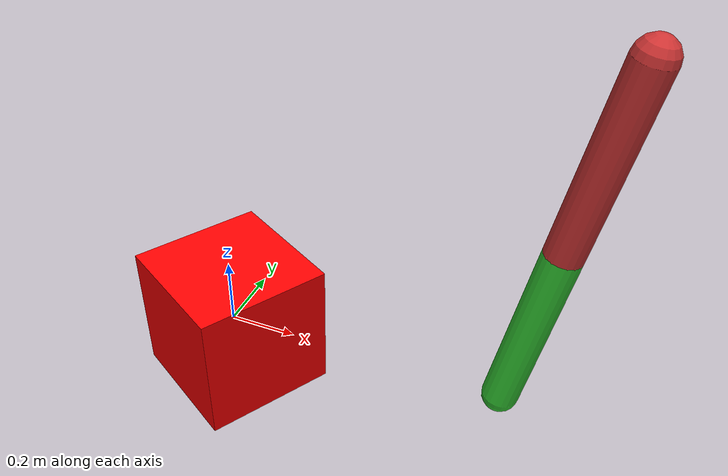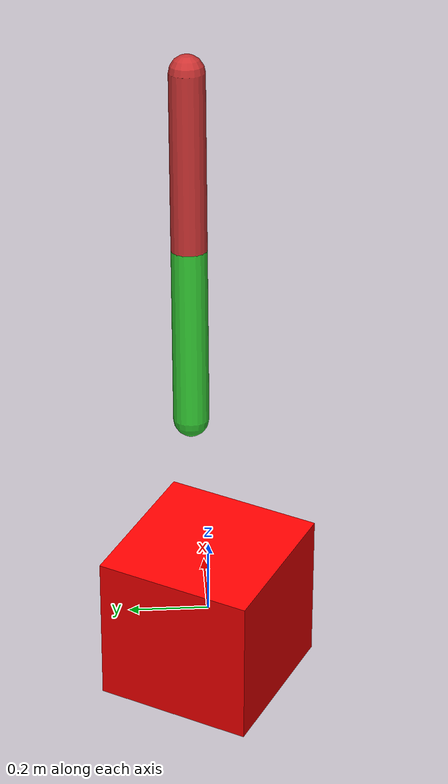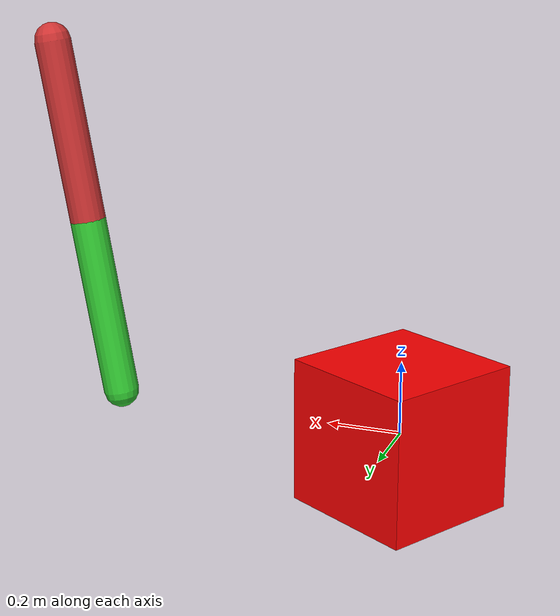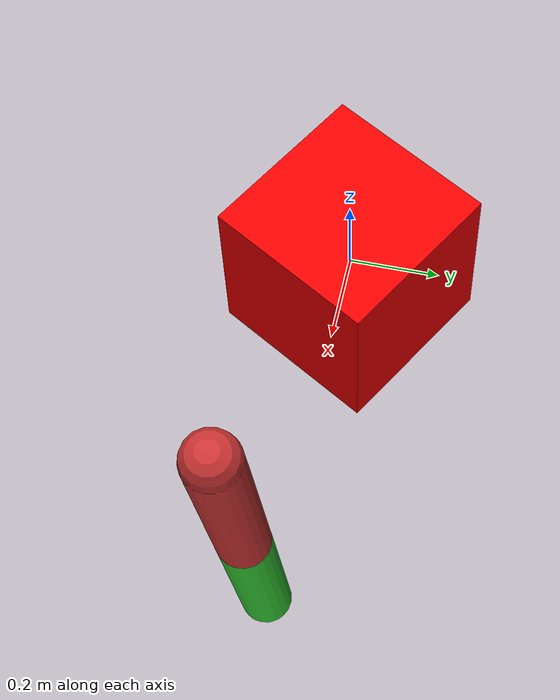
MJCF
<mujoco>
  <worldbody>
    <light diffuse="1 1 1" pos="0 0 3" dir="0 0 -1"/>
    <body name="box_and_sphere" euler="0 0 -30">
      <joint name="swing" type="hinge" axis="1 -1 0" pos="-.2 -.2 -.2"/>
      <geom name="red_box" type="box" size=".2 .2 .2" rgba="1 0 0 1"/>
    </body>

    <!-- link1 --joint1-- link2 -->
    <!-- Unlike URDF, the hierarchy of XML implicates the joint connection between two bodies. -->
    <body name="link1" pos="1 0 1" euler="0 10 0">
      <geom type="capsule" fromto="0 0 0  0 0 -0.5" size="0.05" rgba="0.8 0.2 0.2 1"/>
      <body name="link2" pos="0 0 -0.5">
        <joint name="joint1" type="hinge" axis="0 1 0"/>
        <geom type="capsule" fromto="0 0 0  0 0 -0.5" size="0.05" rgba="0.2 0.8 0.2 1"/>
      </body>
    </body>
  </worldbody>
</mujoco>
